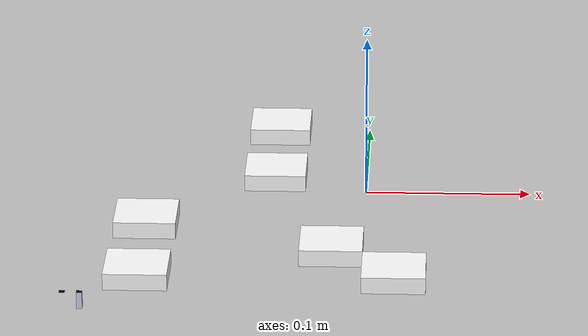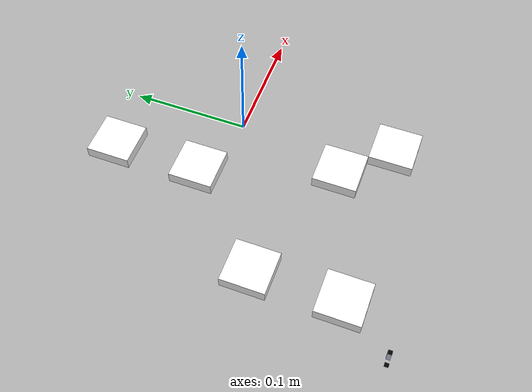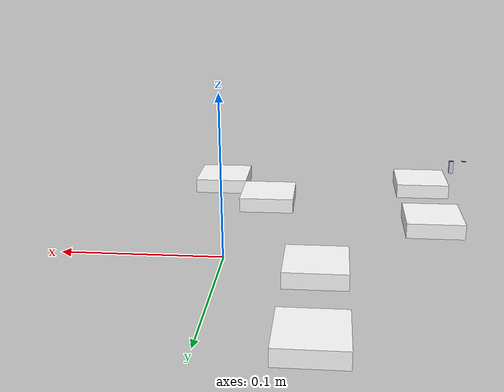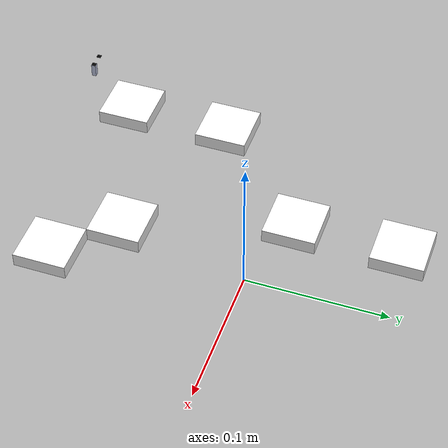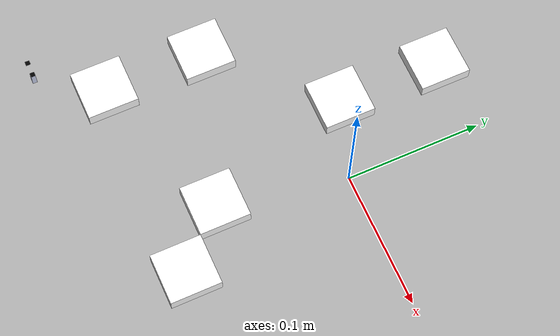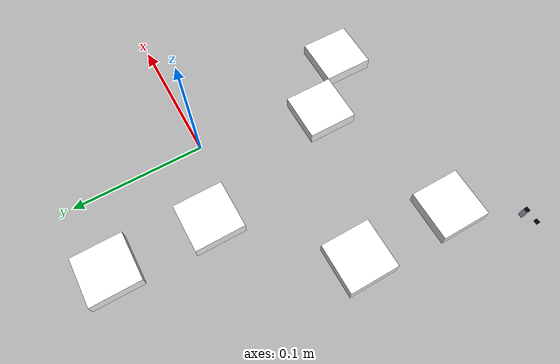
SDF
<sdf version="1.6">
 <world name="default">
  <model name="part0.obj">
   <static>1</static>
   <link name="link_d0">
    <inertial>
     <mass>0</mass>
     <inertia>
      <ixx>0.166667</ixx>
      <ixy>0</ixy>
      <ixz>0</ixz>
      <iyy>0.166667</iyy>
      <iyz>0</iyz>
      <izz>0.166667</izz>
     </inertia>
    </inertial>
    <collision name="collision_0">
     <geometry><mesh><scale>1 1 1</scale><uri>part0.obj</uri></mesh></geometry>
    </collision>
    <visual name="visual">
     <geometry><mesh><scale>1 1 1</scale><uri>part0.obj</uri></mesh></geometry>
     <material>
      <ambient>1 0 0 1</ambient>
      <diffuse>1.000000 1.000000 1.000000 0.000000</diffuse>
      <specular>0.1 0.1 0.1 1</specular>
      <emissive>0 0 0 0</emissive>
     </material>
    </visual>
   </link>
  </model>
  <model name="part1.obj">
   <static>1</static>
   <link name="link_d1">
    <inertial>
     <mass>0</mass>
     <inertia>
      <ixx>0.166667</ixx>
      <ixy>0</ixy>
      <ixz>0</ixz>
      <iyy>0.166667</iyy>
      <iyz>0</iyz>
      <izz>0.166667</izz>
     </inertia>
    </inertial>
    <collision name="collision_1">
     <geometry><mesh><scale>1 1 1</scale><uri>part1.obj</uri></mesh></geometry>
    </collision>
    <visual name="visual">
     <geometry><mesh><scale>1 1 1</scale><uri>part1.obj</uri></mesh></geometry>
     <material>
      <ambient>1 0 0 1</ambient>
      <diffuse>1.000000 1.000000 1.000000 0.000000</diffuse>
      <specular>0.1 0.1 0.1 1</specular>
      <emissive>0 0 0 0</emissive>
     </material>
    </visual>
   </link>
  </model>
  <model name="part10.obj">
   <static>1</static>
   <link name="link_d10">
    <inertial>
     <mass>0</mass>
     <inertia>
      <ixx>0.166667</ixx>
      <ixy>0</ixy>
      <ixz>0</ixz>
      <iyy>0.166667</iyy>
      <iyz>0</iyz>
      <izz>0.166667</izz>
     </inertia>
    </inertial>
    <collision name="collision_10">
     <geometry><mesh><scale>1 1 1</scale><uri>part10.obj</uri></mesh></geometry>
    </collision>
    <visual name="visual">
     <geometry><mesh><scale>1 1 1</scale><uri>part10.obj</uri></mesh></geometry>
     <material>
      <ambient>1 0 0 1</ambient>
      <diffuse>1.000000 1.000000 1.000000 0.000000</diffuse>
      <specular>0.1 0.1 0.1 1</specular>
      <emissive>0 0 0 0</emissive>
     </material>
    </visual>
   </link>
  </model>
  <model name="part11.obj">
   <static>1</static>
   <link name="link_d11">
    <inertial>
     <mass>0</mass>
     <inertia>
      <ixx>0.166667</ixx>
      <ixy>0</ixy>
      <ixz>0</ixz>
      <iyy>0.166667</iyy>
      <iyz>0</iyz>
      <izz>0.166667</izz>
     </inertia>
    </inertial>
    <collision name="collision_11">
     <geometry><mesh><scale>1 1 1</scale><uri>part11.obj</uri></mesh></geometry>
    </collision>
    <visual name="visual">
     <geometry><mesh><scale>1 1 1</scale><uri>part11.obj</uri></mesh></geometry>
     <material>
      <ambient>1 0 0 1</ambient>
      <diffuse>1.000000 1.000000 1.000000 0.000000</diffuse>
      <specular>0.1 0.1 0.1 1</specular>
      <emissive>0 0 0 0</emissive>
     </material>
    </visual>
   </link>
  </model>
  <model name="part12.obj">
   <static>1</static>
   <link name="link_d12">
    <inertial>
     <mass>0</mass>
     <inertia>
      <ixx>0.166667</ixx>
      <ixy>0</ixy>
      <ixz>0</ixz>
      <iyy>0.166667</iyy>
      <iyz>0</iyz>
      <izz>0.166667</izz>
     </inertia>
    </inertial>
    <collision name="collision_12">
     <geometry><mesh><scale>1 1 1</scale><uri>part12.obj</uri></mesh></geometry>
    </collision>
    <visual name="visual">
     <geometry><mesh><scale>1 1 1</scale><uri>part12.obj</uri></mesh></geometry>
     <material>
      <ambient>1 0 0 1</ambient>
      <diffuse>1.000000 1.000000 1.000000 0.000000</diffuse>
      <specular>0.1 0.1 0.1 1</specular>
      <emissive>0 0 0 0</emissive>
     </material>
    </visual>
   </link>
  </model>
  <model name="part13.obj">
   <static>1</static>
   <link name="link_d13">
    <inertial>
     <mass>0</mass>
     <inertia>
      <ixx>0.166667</ixx>
      <ixy>0</ixy>
      <ixz>0</ixz>
      <iyy>0.166667</iyy>
      <iyz>0</iyz>
      <izz>0.166667</izz>
     </inertia>
    </inertial>
    <collision name="collision_13">
     <geometry><mesh><scale>1 1 1</scale><uri>part13.obj</uri></mesh></geometry>
    </collision>
    <visual name="visual">
     <geometry><mesh><scale>1 1 1</scale><uri>part13.obj</uri></mesh></geometry>
     <material>
      <ambient>1 0 0 1</ambient>
      <diffuse>1.000000 1.000000 1.000000 0.000000</diffuse>
      <specular>0.1 0.1 0.1 1</specular>
      <emissive>0 0 0 0</emissive>
     </material>
    </visual>
   </link>
  </model>
  <model name="part100.obj">
   <static>1</static>
   <link name="link_d100">
    <inertial>
     <mass>0</mass>
     <inertia>
      <ixx>0.166667</ixx>
      <ixy>0</ixy>
      <ixz>0</ixz>
      <iyy>0.166667</iyy>
      <iyz>0</iyz>
      <izz>0.166667</izz>
     </inertia>
    </inertial>
    <collision name="collision_100">
     <geometry><mesh><scale>1 1 1</scale><uri>part100.obj</uri></mesh></geometry>
    </collision>
    <visual name="visual">
     <geometry><mesh><scale>1 1 1</scale><uri>part100.obj</uri></mesh></geometry>
     <material>
      <ambient>1 0 0 1</ambient>
      <diffuse>0.000000 0.000000 0.000000 0.000000</diffuse>
      <specular>0.1 0.1 0.1 1</specular>
      <emissive>0 0 0 0</emissive>
     </material>
    </visual>
   </link>
  </model>
  <model name="part101.obj">
   <static>1</static>
   <link name="link_d101">
    <inertial>
     <mass>0</mass>
     <inertia>
      <ixx>0.166667</ixx>
      <ixy>0</ixy>
      <ixz>0</ixz>
      <iyy>0.166667</iyy>
      <iyz>0</iyz>
      <izz>0.166667</izz>
     </inertia>
    </inertial>
    <collision name="collision_101">
     <geometry><mesh><scale>1 1 1</scale><uri>part101.obj</uri></mesh></geometry>
    </collision>
    <visual name="visual">
     <geometry><mesh><scale>1 1 1</scale><uri>part101.obj</uri></mesh></geometry>
     <material>
      <ambient>1 0 0 1</ambient>
      <diffuse>0.792160 0.819610 0.933330 0.000000</diffuse>
      <specular>0.1 0.1 0.1 1</specular>
      <emissive>0 0 0 0</emissive>
     </material>
    </visual>
   </link>
  </model>
  <model name="part102.obj">
   <static>1</static>
   <link name="link_d102">
    <inertial>
     <mass>0</mass>
     <inertia>
      <ixx>0.166667</ixx>
      <ixy>0</ixy>
      <ixz>0</ixz>
      <iyy>0.166667</iyy>
      <iyz>0</iyz>
      <izz>0.166667</izz>
     </inertia>
    </inertial>
    <collision name="collision_102">
     <geometry><mesh><scale>1 1 1</scale><uri>part102.obj</uri></mesh></geometry>
    </collision>
    <visual name="visual">
     <geometry><mesh><scale>1 1 1</scale><uri>part102.obj</uri></mesh></geometry>
     <material>
      <ambient>1 0 0 1</ambient>
      <diffuse>1.000000 0.895150 0.815106 0.000000</diffuse>
      <specular>0.1 0.1 0.1 1</specular>
      <emissive>0 0 0 0</emissive>
     </material>
    </visual>
   </link>
  </model>
  <model name="part103.obj">
   <static>1</static>
   <link name="link_d103">
    <inertial>
     <mass>0</mass>
     <inertia>
      <ixx>0.166667</ixx>
      <ixy>0</ixy>
      <ixz>0</ixz>
      <iyy>0.166667</iyy>
      <iyz>0</iyz>
      <izz>0.166667</izz>
     </inertia>
    </inertial>
    <collision name="collision_103">
     <geometry><mesh><scale>1 1 1</scale><uri>part103.obj</uri></mesh></geometry>
    </collision>
    <visual name="visual">
     <geometry><mesh><scale>1 1 1</scale><uri>part103.obj</uri></mesh></geometry>
     <material>
      <ambient>1 0 0 1</ambient>
      <diffuse>0.000000 0.000000 0.000000 0.000000</diffuse>
      <specular>0.1 0.1 0.1 1</specular>
      <emissive>0 0 0 0</emissive>
     </material>
    </visual>
   </link>
  </model>
 </world>
</sdf>
